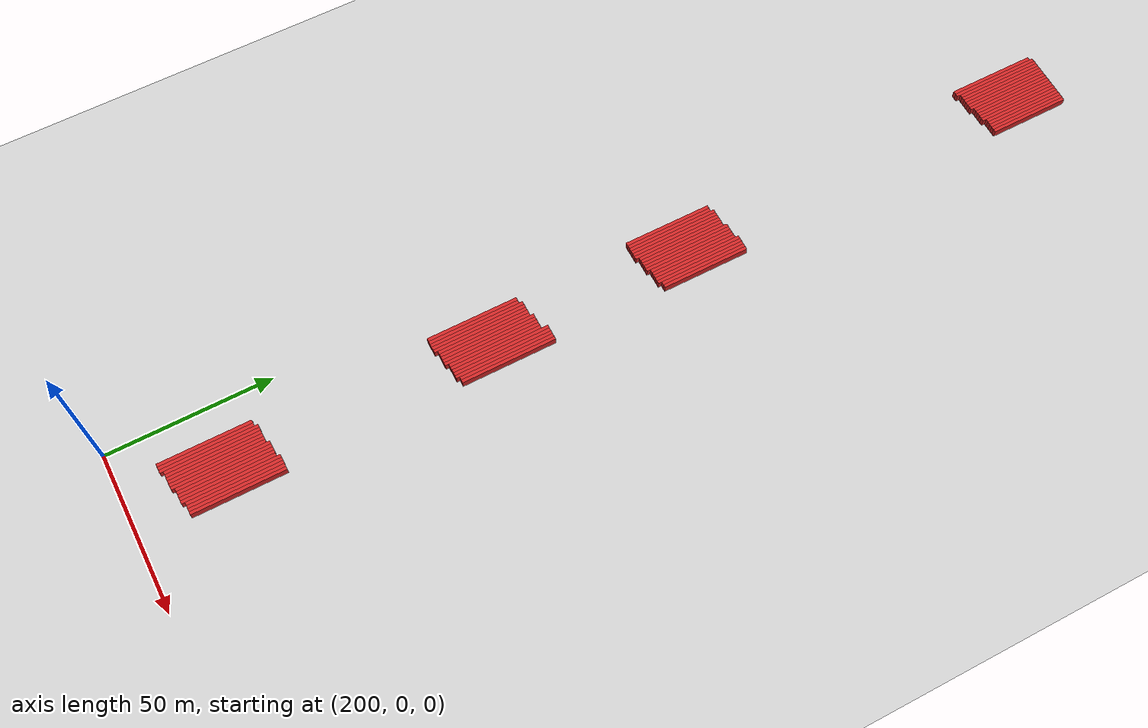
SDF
<sdf version="1.4">
 <world name="1_wall">
  <model name="ground_plane">
   <static>1</static>
   <link name="link">
    <collision name="collision">
     <geometry><plane><normal>0 0 1</normal><size>1000 1000</size></plane></geometry>
     <surface><friction><ode><mu>100</mu><mu2>50</mu2></ode></friction></surface>
    </collision>
    <visual name="visual">
     <cast_shadows>0</cast_shadows>
     <geometry><plane><normal>0 0 1</normal><size>10000 10000</size></plane></geometry>
     <material>
      <script><uri>file://media/materials/scripts/gazebo.material</uri><name>Gazebo/Grey</name></script>
     </material>
    </visual>
    <velocity_decay><linear>0</linear><angular>0</angular></velocity_decay>
   </link>
  </model>
  <model name="Wall_640">
   <static>1</static>
   <link name="Wall_640">
    <collision name="Wall_Collision_640">
     <geometry><box><size>27.0 1.0 2.5</size></box></geometry>
     <pose>0 0 1.25 0 -0 0</pose>
    </collision>
    <visual name="Wall_Visual_640">
     <pose>0 0 1.25 0 -0 0</pose>
     <geometry><box><size>27.0 1.0 2.5</size></box></geometry>
     <material>
      <script><uri>file://media/materials/scripts/gazebo.material</uri><name>Gazebo/Red</name></script>
     </material>
    </visual>
    <velocity_decay><linear>0</linear><angular>0</angular></velocity_decay>
    <pose>209.5 170.5 0 0 0 1.5707963267948966</pose>
   </link>
  </model>
  <model name="Wall_641">
   <static>1</static>
   <link name="Wall_641">
    <collision name="Wall_Collision_641">
     <geometry><box><size>27.0 1.0 2.5</size></box></geometry>
     <pose>0 0 1.25 0 -0 0</pose>
    </collision>
    <visual name="Wall_Visual_641">
     <pose>0 0 1.25 0 -0 0</pose>
     <geometry><box><size>27.0 1.0 2.5</size></box></geometry>
     <material>
      <script><uri>file://media/materials/scripts/gazebo.material</uri><name>Gazebo/Red</name></script>
     </material>
    </visual>
    <velocity_decay><linear>0</linear><angular>0</angular></velocity_decay>
    <pose>209.5 283.5 0 0 0 1.5707963267948966</pose>
   </link>
  </model>
  <model name="Wall_642">
   <static>1</static>
   <link name="Wall_642">
    <collision name="Wall_Collision_642">
     <geometry><box><size>28.0 1.0 2.5</size></box></geometry>
     <pose>0 0 1.25 0 -0 0</pose>
    </collision>
    <visual name="Wall_Visual_642">
     <pose>0 0 1.25 0 -0 0</pose>
     <geometry><box><size>28.0 1.0 2.5</size></box></geometry>
     <material>
      <script><uri>file://media/materials/scripts/gazebo.material</uri><name>Gazebo/Red</name></script>
     </material>
    </visual>
    <velocity_decay><linear>0</linear><angular>0</angular></velocity_decay>
    <pose>210.5 26.0 0 0 0 1.5707963267948966</pose>
   </link>
  </model>
  <model name="Wall_643">
   <static>1</static>
   <link name="Wall_643">
    <collision name="Wall_Collision_643">
     <geometry><box><size>28.0 1.0 2.5</size></box></geometry>
     <pose>0 0 1.25 0 -0 0</pose>
    </collision>
    <visual name="Wall_Visual_643">
     <pose>0 0 1.25 0 -0 0</pose>
     <geometry><box><size>28.0 1.0 2.5</size></box></geometry>
     <material>
      <script><uri>file://media/materials/scripts/gazebo.material</uri><name>Gazebo/Red</name></script>
     </material>
    </visual>
    <velocity_decay><linear>0</linear><angular>0</angular></velocity_decay>
    <pose>210.5 107.0 0 0 0 1.5707963267948966</pose>
   </link>
  </model>
  <model name="Wall_644">
   <static>1</static>
   <link name="Wall_644">
    <collision name="Wall_Collision_644">
     <geometry><box><size>27.0 1.0 2.5</size></box></geometry>
     <pose>0 0 1.25 0 -0 0</pose>
    </collision>
    <visual name="Wall_Visual_644">
     <pose>0 0 1.25 0 -0 0</pose>
     <geometry><box><size>27.0 1.0 2.5</size></box></geometry>
     <material>
      <script><uri>file://media/materials/scripts/gazebo.material</uri><name>Gazebo/Red</name></script>
     </material>
    </visual>
    <velocity_decay><linear>0</linear><angular>0</angular></velocity_decay>
    <pose>210.5 170.5 0 0 0 1.5707963267948966</pose>
   </link>
  </model>
  <model name="Wall_645">
   <static>1</static>
   <link name="Wall_645">
    <collision name="Wall_Collision_645">
     <geometry><box><size>28.0 1.0 2.5</size></box></geometry>
     <pose>0 0 1.25 0 -0 0</pose>
    </collision>
    <visual name="Wall_Visual_645">
     <pose>0 0 1.25 0 -0 0</pose>
     <geometry><box><size>28.0 1.0 2.5</size></box></geometry>
     <material>
      <script><uri>file://media/materials/scripts/gazebo.material</uri><name>Gazebo/Red</name></script>
     </material>
    </visual>
    <velocity_decay><linear>0</linear><angular>0</angular></velocity_decay>
    <pose>210.5 284.0 0 0 0 1.5707963267948966</pose>
   </link>
  </model>
  <model name="Wall_646">
   <static>1</static>
   <link name="Wall_646">
    <collision name="Wall_Collision_646">
     <geometry><box><size>28.0 1.0 2.5</size></box></geometry>
     <pose>0 0 1.25 0 -0 0</pose>
    </collision>
    <visual name="Wall_Visual_646">
     <pose>0 0 1.25 0 -0 0</pose>
     <geometry><box><size>28.0 1.0 2.5</size></box></geometry>
     <material>
      <script><uri>file://media/materials/scripts/gazebo.material</uri><name>Gazebo/Red</name></script>
     </material>
    </visual>
    <velocity_decay><linear>0</linear><angular>0</angular></velocity_decay>
    <pose>211.5 26.0 0 0 0 1.5707963267948966</pose>
   </link>
  </model>
  <model name="Wall_647">
   <static>1</static>
   <link name="Wall_647">
    <collision name="Wall_Collision_647">
     <geometry><box><size>28.0 1.0 2.5</size></box></geometry>
     <pose>0 0 1.25 0 -0 0</pose>
    </collision>
    <visual name="Wall_Visual_647">
     <pose>0 0 1.25 0 -0 0</pose>
     <geometry><box><size>28.0 1.0 2.5</size></box></geometry>
     <material>
      <script><uri>file://media/materials/scripts/gazebo.material</uri><name>Gazebo/Red</name></script>
     </material>
    </visual>
    <velocity_decay><linear>0</linear><angular>0</angular></velocity_decay>
    <pose>211.5 107.0 0 0 0 1.5707963267948966</pose>
   </link>
  </model>
  <model name="Wall_648">
   <static>1</static>
   <link name="Wall_648">
    <collision name="Wall_Collision_648">
     <geometry><box><size>28.0 1.0 2.5</size></box></geometry>
     <pose>0 0 1.25 0 -0 0</pose>
    </collision>
    <visual name="Wall_Visual_648">
     <pose>0 0 1.25 0 -0 0</pose>
     <geometry><box><size>28.0 1.0 2.5</size></box></geometry>
     <material>
      <script><uri>file://media/materials/scripts/gazebo.material</uri><name>Gazebo/Red</name></script>
     </material>
    </visual>
    <velocity_decay><linear>0</linear><angular>0</angular></velocity_decay>
    <pose>211.5 171.0 0 0 0 1.5707963267948966</pose>
   </link>
  </model>
  <model name="Wall_649">
   <static>1</static>
   <link name="Wall_649">
    <collision name="Wall_Collision_649">
     <geometry><box><size>27.0 1.0 2.5</size></box></geometry>
     <pose>0 0 1.25 0 -0 0</pose>
    </collision>
    <visual name="Wall_Visual_649">
     <pose>0 0 1.25 0 -0 0</pose>
     <geometry><box><size>27.0 1.0 2.5</size></box></geometry>
     <material>
      <script><uri>file://media/materials/scripts/gazebo.material</uri><name>Gazebo/Red</name></script>
     </material>
    </visual>
    <velocity_decay><linear>0</linear><angular>0</angular></velocity_decay>
    <pose>211.5 284.5 0 0 0 1.5707963267948966</pose>
   </link>
  </model>
  <model name="Wall_650">
   <static>1</static>
   <link name="Wall_650">
    <collision name="Wall_Collision_650">
     <geometry><box><size>29.0 1.0 2.5</size></box></geometry>
     <pose>0 0 1.25 0 -0 0</pose>
    </collision>
    <visual name="Wall_Visual_650">
     <pose>0 0 1.25 0 -0 0</pose>
     <geometry><box><size>29.0 1.0 2.5</size></box></geometry>
     <material>
      <script><uri>file://media/materials/scripts/gazebo.material</uri><name>Gazebo/Red</name></script>
     </material>
    </visual>
    <velocity_decay><linear>0</linear><angular>0</angular></velocity_decay>
    <pose>212.5 26.5 0 0 0 1.5707963267948966</pose>
   </link>
  </model>
  <model name="Wall_651">
   <static>1</static>
   <link name="Wall_651">
    <collision name="Wall_Collision_651">
     <geometry><box><size>29.0 1.0 2.5</size></box></geometry>
     <pose>0 0 1.25 0 -0 0</pose>
    </collision>
    <visual name="Wall_Visual_651">
     <pose>0 0 1.25 0 -0 0</pose>
     <geometry><box><size>29.0 1.0 2.5</size></box></geometry>
     <material>
      <script><uri>file://media/materials/scripts/gazebo.material</uri><name>Gazebo/Red</name></script>
     </material>
    </visual>
    <velocity_decay><linear>0</linear><angular>0</angular></velocity_decay>
    <pose>212.5 107.5 0 0 0 1.5707963267948966</pose>
   </link>
  </model>
  <model name="Wall_652">
   <static>1</static>
   <link name="Wall_652">
    <collision name="Wall_Collision_652">
     <geometry><box><size>28.0 1.0 2.5</size></box></geometry>
     <pose>0 0 1.25 0 -0 0</pose>
    </collision>
    <visual name="Wall_Visual_652">
     <pose>0 0 1.25 0 -0 0</pose>
     <geometry><box><size>28.0 1.0 2.5</size></box></geometry>
     <material>
      <script><uri>file://media/materials/scripts/gazebo.material</uri><name>Gazebo/Red</name></script>
     </material>
    </visual>
    <velocity_decay><linear>0</linear><angular>0</angular></velocity_decay>
    <pose>212.5 171.0 0 0 0 1.5707963267948966</pose>
   </link>
  </model>
  <model name="Wall_653">
   <static>1</static>
   <link name="Wall_653">
    <collision name="Wall_Collision_653">
     <geometry><box><size>27.0 1.0 2.5</size></box></geometry>
     <pose>0 0 1.25 0 -0 0</pose>
    </collision>
    <visual name="Wall_Visual_653">
     <pose>0 0 1.25 0 -0 0</pose>
     <geometry><box><size>27.0 1.0 2.5</size></box></geometry>
     <material>
      <script><uri>file://media/materials/scripts/gazebo.material</uri><name>Gazebo/Red</name></script>
     </material>
    </visual>
    <velocity_decay><linear>0</linear><angular>0</angular></velocity_decay>
    <pose>212.5 284.5 0 0 0 1.5707963267948966</pose>
   </link>
  </model>
  <model name="Wall_654">
   <static>1</static>
   <link name="Wall_654">
    <collision name="Wall_Collision_654">
     <geometry><box><size>28.0 1.0 2.5</size></box></geometry>
     <pose>0 0 1.25 0 -0 0</pose>
    </collision>
    <visual name="Wall_Visual_654">
     <pose>0 0 1.25 0 -0 0</pose>
     <geometry><box><size>28.0 1.0 2.5</size></box></geometry>
     <material>
      <script><uri>file://media/materials/scripts/gazebo.material</uri><name>Gazebo/Red</name></script>
     </material>
    </visual>
    <velocity_decay><linear>0</linear><angular>0</angular></velocity_decay>
    <pose>213.5 27.0 0 0 0 1.5707963267948966</pose>
   </link>
  </model>
  <model name="Wall_655">
   <static>1</static>
   <link name="Wall_655">
    <collision name="Wall_Collision_655">
     <geometry><box><size>29.0 1.0 2.5</size></box></geometry>
     <pose>0 0 1.25 0 -0 0</pose>
    </collision>
    <visual name="Wall_Visual_655">
     <pose>0 0 1.25 0 -0 0</pose>
     <geometry><box><size>29.0 1.0 2.5</size></box></geometry>
     <material>
      <script><uri>file://media/materials/scripts/gazebo.material</uri><name>Gazebo/Red</name></script>
     </material>
    </visual>
    <velocity_decay><linear>0</linear><angular>0</angular></velocity_decay>
    <pose>213.5 107.5 0 0 0 1.5707963267948966</pose>
   </link>
  </model>
  <model name="Wall_656">
   <static>1</static>
   <link name="Wall_656">
    <collision name="Wall_Collision_656">
     <geometry><box><size>28.0 1.0 2.5</size></box></geometry>
     <pose>0 0 1.25 0 -0 0</pose>
    </collision>
    <visual name="Wall_Visual_656">
     <pose>0 0 1.25 0 -0 0</pose>
     <geometry><box><size>28.0 1.0 2.5</size></box></geometry>
     <material>
      <script><uri>file://media/materials/scripts/gazebo.material</uri><name>Gazebo/Red</name></script>
     </material>
    </visual>
    <velocity_decay><linear>0</linear><angular>0</angular></velocity_decay>
    <pose>213.5 171.0 0 0 0 1.5707963267948966</pose>
   </link>
  </model>
  <model name="Wall_657">
   <static>1</static>
   <link name="Wall_657">
    <collision name="Wall_Collision_657">
     <geometry><box><size>27.0 1.0 2.5</size></box></geometry>
     <pose>0 0 1.25 0 -0 0</pose>
    </collision>
    <visual name="Wall_Visual_657">
     <pose>0 0 1.25 0 -0 0</pose>
     <geometry><box><size>27.0 1.0 2.5</size></box></geometry>
     <material>
      <script><uri>file://media/materials/scripts/gazebo.material</uri><name>Gazebo/Red</name></script>
     </material>
    </visual>
    <velocity_decay><linear>0</linear><angular>0</angular></velocity_decay>
    <pose>213.5 284.5 0 0 0 1.5707963267948966</pose>
   </link>
  </model>
  <model name="Wall_658">
   <static>1</static>
   <link name="Wall_658">
    <collision name="Wall_Collision_658">
     <geometry><box><size>28.0 1.0 2.5</size></box></geometry>
     <pose>0 0 1.25 0 -0 0</pose>
    </collision>
    <visual name="Wall_Visual_658">
     <pose>0 0 1.25 0 -0 0</pose>
     <geometry><box><size>28.0 1.0 2.5</size></box></geometry>
     <material>
      <script><uri>file://media/materials/scripts/gazebo.material</uri><name>Gazebo/Red</name></script>
     </material>
    </visual>
    <velocity_decay><linear>0</linear><angular>0</angular></velocity_decay>
    <pose>214.5 27.0 0 0 0 1.5707963267948966</pose>
   </link>
  </model>
  <model name="Wall_659">
   <static>1</static>
   <link name="Wall_659">
    <collision name="Wall_Collision_659">
     <geometry><box><size>29.0 1.0 2.5</size></box></geometry>
     <pose>0 0 1.25 0 -0 0</pose>
    </collision>
    <visual name="Wall_Visual_659">
     <pose>0 0 1.25 0 -0 0</pose>
     <geometry><box><size>29.0 1.0 2.5</size></box></geometry>
     <material>
      <script><uri>file://media/materials/scripts/gazebo.material</uri><name>Gazebo/Red</name></script>
     </material>
    </visual>
    <velocity_decay><linear>0</linear><angular>0</angular></velocity_decay>
    <pose>214.5 107.5 0 0 0 1.5707963267948966</pose>
   </link>
  </model>
  <model name="Wall_660">
   <static>1</static>
   <link name="Wall_660">
    <collision name="Wall_Collision_660">
     <geometry><box><size>28.0 1.0 2.5</size></box></geometry>
     <pose>0 0 1.25 0 -0 0</pose>
    </collision>
    <visual name="Wall_Visual_660">
     <pose>0 0 1.25 0 -0 0</pose>
     <geometry><box><size>28.0 1.0 2.5</size></box></geometry>
     <material>
      <script><uri>file://media/materials/scripts/gazebo.material</uri><name>Gazebo/Red</name></script>
     </material>
    </visual>
    <velocity_decay><linear>0</linear><angular>0</angular></velocity_decay>
    <pose>214.5 171.0 0 0 0 1.5707963267948966</pose>
   </link>
  </model>
  <model name="Wall_661">
   <static>1</static>
   <link name="Wall_661">
    <collision name="Wall_Collision_661">
     <geometry><box><size>27.0 1.0 2.5</size></box></geometry>
     <pose>0 0 1.25 0 -0 0</pose>
    </collision>
    <visual name="Wall_Visual_661">
     <pose>0 0 1.25 0 -0 0</pose>
     <geometry><box><size>27.0 1.0 2.5</size></box></geometry>
     <material>
      <script><uri>file://media/materials/scripts/gazebo.material</uri><name>Gazebo/Red</name></script>
     </material>
    </visual>
    <velocity_decay><linear>0</linear><angular>0</angular></velocity_decay>
    <pose>214.5 284.5 0 0 0 1.5707963267948966</pose>
   </link>
  </model>
  <model name="Wall_662">
   <static>1</static>
   <link name="Wall_662">
    <collision name="Wall_Collision_662">
     <geometry><box><size>28.0 1.0 2.5</size></box></geometry>
     <pose>0 0 1.25 0 -0 0</pose>
    </collision>
    <visual name="Wall_Visual_662">
     <pose>0 0 1.25 0 -0 0</pose>
     <geometry><box><size>28.0 1.0 2.5</size></box></geometry>
     <material>
      <script><uri>file://media/materials/scripts/gazebo.material</uri><name>Gazebo/Red</name></script>
     </material>
    </visual>
    <velocity_decay><linear>0</linear><angular>0</angular></velocity_decay>
    <pose>215.5 27.0 0 0 0 1.5707963267948966</pose>
   </link>
  </model>
  <model name="Wall_663">
   <static>1</static>
   <link name="Wall_663">
    <collision name="Wall_Collision_663">
     <geometry><box><size>28.0 1.0 2.5</size></box></geometry>
     <pose>0 0 1.25 0 -0 0</pose>
    </collision>
    <visual name="Wall_Visual_663">
     <pose>0 0 1.25 0 -0 0</pose>
     <geometry><box><size>28.0 1.0 2.5</size></box></geometry>
     <material>
      <script><uri>file://media/materials/scripts/gazebo.material</uri><name>Gazebo/Red</name></script>
     </material>
    </visual>
    <velocity_decay><linear>0</linear><angular>0</angular></velocity_decay>
    <pose>215.5 108.0 0 0 0 1.5707963267948966</pose>
   </link>
  </model>
  <model name="Wall_664">
   <static>1</static>
   <link name="Wall_664">
    <collision name="Wall_Collision_664">
     <geometry><box><size>27.0 1.0 2.5</size></box></geometry>
     <pose>0 0 1.25 0 -0 0</pose>
    </collision>
    <visual name="Wall_Visual_664">
     <pose>0 0 1.25 0 -0 0</pose>
     <geometry><box><size>27.0 1.0 2.5</size></box></geometry>
     <material>
      <script><uri>file://media/materials/scripts/gazebo.material</uri><name>Gazebo/Red</name></script>
     </material>
    </visual>
    <velocity_decay><linear>0</linear><angular>0</angular></velocity_decay>
    <pose>215.5 171.5 0 0 0 1.5707963267948966</pose>
   </link>
  </model>
  <model name="Wall_665">
   <static>1</static>
   <link name="Wall_665">
    <collision name="Wall_Collision_665">
     <geometry><box><size>27.0 1.0 2.5</size></box></geometry>
     <pose>0 0 1.25 0 -0 0</pose>
    </collision>
    <visual name="Wall_Visual_665">
     <pose>0 0 1.25 0 -0 0</pose>
     <geometry><box><size>27.0 1.0 2.5</size></box></geometry>
     <material>
      <script><uri>file://media/materials/scripts/gazebo.material</uri><name>Gazebo/Red</name></script>
     </material>
    </visual>
    <velocity_decay><linear>0</linear><angular>0</angular></velocity_decay>
    <pose>215.5 284.5 0 0 0 1.5707963267948966</pose>
   </link>
  </model>
  <model name="Wall_666">
   <static>1</static>
   <link name="Wall_666">
    <collision name="Wall_Collision_666">
     <geometry><box><size>28.0 1.0 2.5</size></box></geometry>
     <pose>0 0 1.25 0 -0 0</pose>
    </collision>
    <visual name="Wall_Visual_666">
     <pose>0 0 1.25 0 -0 0</pose>
     <geometry><box><size>28.0 1.0 2.5</size></box></geometry>
     <material>
      <script><uri>file://media/materials/scripts/gazebo.material</uri><name>Gazebo/Red</name></script>
     </material>
    </visual>
    <velocity_decay><linear>0</linear><angular>0</angular></velocity_decay>
    <pose>216.5 27.0 0 0 0 1.5707963267948966</pose>
   </link>
  </model>
  <model name="Wall_667">
   <static>1</static>
   <link name="Wall_667">
    <collision name="Wall_Collision_667">
     <geometry><box><size>28.0 1.0 2.5</size></box></geometry>
     <pose>0 0 1.25 0 -0 0</pose>
    </collision>
    <visual name="Wall_Visual_667">
     <pose>0 0 1.25 0 -0 0</pose>
     <geometry><box><size>28.0 1.0 2.5</size></box></geometry>
     <material>
      <script><uri>file://media/materials/scripts/gazebo.material</uri><name>Gazebo/Red</name></script>
     </material>
    </visual>
    <velocity_decay><linear>0</linear><angular>0</angular></velocity_decay>
    <pose>216.5 108.0 0 0 0 1.5707963267948966</pose>
   </link>
  </model>
  <model name="Wall_668">
   <static>1</static>
   <link name="Wall_668">
    <collision name="Wall_Collision_668">
     <geometry><box><size>27.0 1.0 2.5</size></box></geometry>
     <pose>0 0 1.25 0 -0 0</pose>
    </collision>
    <visual name="Wall_Visual_668">
     <pose>0 0 1.25 0 -0 0</pose>
     <geometry><box><size>27.0 1.0 2.5</size></box></geometry>
     <material>
      <script><uri>file://media/materials/scripts/gazebo.material</uri><name>Gazebo/Red</name></script>
     </material>
    </visual>
    <velocity_decay><linear>0</linear><angular>0</angular></velocity_decay>
    <pose>216.5 171.5 0 0 0 1.5707963267948966</pose>
   </link>
  </model>
  <model name="Wall_669">
   <static>1</static>
   <link name="Wall_669">
    <collision name="Wall_Collision_669">
     <geometry><box><size>27.0 1.0 2.5</size></box></geometry>
     <pose>0 0 1.25 0 -0 0</pose>
    </collision>
    <visual name="Wall_Visual_669">
     <pose>0 0 1.25 0 -0 0</pose>
     <geometry><box><size>27.0 1.0 2.5</size></box></geometry>
     <material>
      <script><uri>file://media/materials/scripts/gazebo.material</uri><name>Gazebo/Red</name></script>
     </material>
    </visual>
    <velocity_decay><linear>0</linear><angular>0</angular></velocity_decay>
    <pose>216.5 284.5 0 0 0 1.5707963267948966</pose>
   </link>
  </model>
  <model name="Wall_670">
   <static>1</static>
   <link name="Wall_670">
    <collision name="Wall_Collision_670">
     <geometry><box><size>28.0 1.0 2.5</size></box></geometry>
     <pose>0 0 1.25 0 -0 0</pose>
    </collision>
    <visual name="Wall_Visual_670">
     <pose>0 0 1.25 0 -0 0</pose>
     <geometry><box><size>28.0 1.0 2.5</size></box></geometry>
     <material>
      <script><uri>file://media/materials/scripts/gazebo.material</uri><name>Gazebo/Red</name></script>
     </material>
    </visual>
    <velocity_decay><linear>0</linear><angular>0</angular></velocity_decay>
    <pose>217.5 27.0 0 0 0 1.5707963267948966</pose>
   </link>
  </model>
  <model name="Wall_671">
   <static>1</static>
   <link name="Wall_671">
    <collision name="Wall_Collision_671">
     <geometry><box><size>29.0 1.0 2.5</size></box></geometry>
     <pose>0 0 1.25 0 -0 0</pose>
    </collision>
    <visual name="Wall_Visual_671">
     <pose>0 0 1.25 0 -0 0</pose>
     <geometry><box><size>29.0 1.0 2.5</size></box></geometry>
     <material>
      <script><uri>file://media/materials/scripts/gazebo.material</uri><name>Gazebo/Red</name></script>
     </material>
    </visual>
    <velocity_decay><linear>0</linear><angular>0</angular></velocity_decay>
    <pose>217.5 108.5 0 0 0 1.5707963267948966</pose>
   </link>
  </model>
  <model name="Wall_672">
   <static>1</static>
   <link name="Wall_672">
    <collision name="Wall_Collision_672">
     <geometry><box><size>28.0 1.0 2.5</size></box></geometry>
     <pose>0 0 1.25 0 -0 0</pose>
    </collision>
    <visual name="Wall_Visual_672">
     <pose>0 0 1.25 0 -0 0</pose>
     <geometry><box><size>28.0 1.0 2.5</size></box></geometry>
     <material>
      <script><uri>file://media/materials/scripts/gazebo.material</uri><name>Gazebo/Red</name></script>
     </material>
    </visual>
    <velocity_decay><linear>0</linear><angular>0</angular></velocity_decay>
    <pose>217.5 172.0 0 0 0 1.5707963267948966</pose>
   </link>
  </model>
  <model name="Wall_673">
   <static>1</static>
   <link name="Wall_673">
    <collision name="Wall_Collision_673">
     <geometry><box><size>26.0 1.0 2.5</size></box></geometry>
     <pose>0 0 1.25 0 -0 0</pose>
    </collision>
    <visual name="Wall_Visual_673">
     <pose>0 0 1.25 0 -0 0</pose>
     <geometry><box><size>26.0 1.0 2.5</size></box></geometry>
     <material>
      <script><uri>file://media/materials/scripts/gazebo.material</uri><name>Gazebo/Red</name></script>
     </material>
    </visual>
    <velocity_decay><linear>0</linear><angular>0</angular></velocity_decay>
    <pose>217.5 285.0 0 0 0 1.5707963267948966</pose>
   </link>
  </model>
  <model name="Wall_674">
   <static>1</static>
   <link name="Wall_674">
    <collision name="Wall_Collision_674">
     <geometry><box><size>29.0 1.0 2.5</size></box></geometry>
     <pose>0 0 1.25 0 -0 0</pose>
    </collision>
    <visual name="Wall_Visual_674">
     <pose>0 0 1.25 0 -0 0</pose>
     <geometry><box><size>29.0 1.0 2.5</size></box></geometry>
     <material>
      <script><uri>file://media/materials/scripts/gazebo.material</uri><name>Gazebo/Red</name></script>
     </material>
    </visual>
    <velocity_decay><linear>0</linear><angular>0</angular></velocity_decay>
    <pose>218.5 27.5 0 0 0 1.5707963267948966</pose>
   </link>
  </model>
  <model name="Wall_675">
   <static>1</static>
   <link name="Wall_675">
    <collision name="Wall_Collision_675">
     <geometry><box><size>29.0 1.0 2.5</size></box></geometry>
     <pose>0 0 1.25 0 -0 0</pose>
    </collision>
    <visual name="Wall_Visual_675">
     <pose>0 0 1.25 0 -0 0</pose>
     <geometry><box><size>29.0 1.0 2.5</size></box></geometry>
     <material>
      <script><uri>file://media/materials/scripts/gazebo.material</uri><name>Gazebo/Red</name></script>
     </material>
    </visual>
    <velocity_decay><linear>0</linear><angular>0</angular></velocity_decay>
    <pose>218.5 108.5 0 0 0 1.5707963267948966</pose>
   </link>
  </model>
  <model name="Wall_676">
   <static>1</static>
   <link name="Wall_676">
    <collision name="Wall_Collision_676">
     <geometry><box><size>28.0 1.0 2.5</size></box></geometry>
     <pose>0 0 1.25 0 -0 0</pose>
    </collision>
    <visual name="Wall_Visual_676">
     <pose>0 0 1.25 0 -0 0</pose>
     <geometry><box><size>28.0 1.0 2.5</size></box></geometry>
     <material>
      <script><uri>file://media/materials/scripts/gazebo.material</uri><name>Gazebo/Red</name></script>
     </material>
    </visual>
    <velocity_decay><linear>0</linear><angular>0</angular></velocity_decay>
    <pose>218.5 172.0 0 0 0 1.5707963267948966</pose>
   </link>
  </model>
  <model name="Wall_677">
   <static>1</static>
   <link name="Wall_677">
    <collision name="Wall_Collision_677">
     <geometry><box><size>26.0 1.0 2.5</size></box></geometry>
     <pose>0 0 1.25 0 -0 0</pose>
    </collision>
    <visual name="Wall_Visual_677">
     <pose>0 0 1.25 0 -0 0</pose>
     <geometry><box><size>26.0 1.0 2.5</size></box></geometry>
     <material>
      <script><uri>file://media/materials/scripts/gazebo.material</uri><name>Gazebo/Red</name></script>
     </material>
    </visual>
    <velocity_decay><linear>0</linear><angular>0</angular></velocity_decay>
    <pose>218.5 285.0 0 0 0 1.5707963267948966</pose>
   </link>
  </model>
  <model name="Wall_678">
   <static>1</static>
   <link name="Wall_678">
    <collision name="Wall_Collision_678">
     <geometry><box><size>28.0 1.0 2.5</size></box></geometry>
     <pose>0 0 1.25 0 -0 0</pose>
    </collision>
    <visual name="Wall_Visual_678">
     <pose>0 0 1.25 0 -0 0</pose>
     <geometry><box><size>28.0 1.0 2.5</size></box></geometry>
     <material>
      <script><uri>file://media/materials/scripts/gazebo.material</uri><name>Gazebo/Red</name></script>
     </material>
    </visual>
    <velocity_decay><linear>0</linear><angular>0</angular></velocity_decay>
    <pose>219.5 28.0 0 0 0 1.5707963267948966</pose>
   </link>
  </model>
  <model name="Wall_679">
   <static>1</static>
   <link name="Wall_679">
    <collision name="Wall_Collision_679">
     <geometry><box><size>29.0 1.0 2.5</size></box></geometry>
     <pose>0 0 1.25 0 -0 0</pose>
    </collision>
    <visual name="Wall_Visual_679">
     <pose>0 0 1.25 0 -0 0</pose>
     <geometry><box><size>29.0 1.0 2.5</size></box></geometry>
     <material>
      <script><uri>file://media/materials/scripts/gazebo.material</uri><name>Gazebo/Red</name></script>
     </material>
    </visual>
    <velocity_decay><linear>0</linear><angular>0</angular></velocity_decay>
    <pose>219.5 108.5 0 0 0 1.5707963267948966</pose>
   </link>
  </model>
  <model name="Wall_680">
   <static>1</static>
   <link name="Wall_680">
    <collision name="Wall_Collision_680">
     <geometry><box><size>28.0 1.0 2.5</size></box></geometry>
     <pose>0 0 1.25 0 -0 0</pose>
    </collision>
    <visual name="Wall_Visual_680">
     <pose>0 0 1.25 0 -0 0</pose>
     <geometry><box><size>28.0 1.0 2.5</size></box></geometry>
     <material>
      <script><uri>file://media/materials/scripts/gazebo.material</uri><name>Gazebo/Red</name></script>
     </material>
    </visual>
    <velocity_decay><linear>0</linear><angular>0</angular></velocity_decay>
    <pose>219.5 172.0 0 0 0 1.5707963267948966</pose>
   </link>
  </model>
  <model name="Wall_681">
   <static>1</static>
   <link name="Wall_681">
    <collision name="Wall_Collision_681">
     <geometry><box><size>26.0 1.0 2.5</size></box></geometry>
     <pose>0 0 1.25 0 -0 0</pose>
    </collision>
    <visual name="Wall_Visual_681">
     <pose>0 0 1.25 0 -0 0</pose>
     <geometry><box><size>26.0 1.0 2.5</size></box></geometry>
     <material>
      <script><uri>file://media/materials/scripts/gazebo.material</uri><name>Gazebo/Red</name></script>
     </material>
    </visual>
    <velocity_decay><linear>0</linear><angular>0</angular></velocity_decay>
    <pose>219.5 285.0 0 0 0 1.5707963267948966</pose>
   </link>
  </model>
  <model name="Wall_682">
   <static>1</static>
   <link name="Wall_682">
    <collision name="Wall_Collision_682">
     <geometry><box><size>28.0 1.0 2.5</size></box></geometry>
     <pose>0 0 1.25 0 -0 0</pose>
    </collision>
    <visual name="Wall_Visual_682">
     <pose>0 0 1.25 0 -0 0</pose>
     <geometry><box><size>28.0 1.0 2.5</size></box></geometry>
     <material>
      <script><uri>file://media/materials/scripts/gazebo.material</uri><name>Gazebo/Red</name></script>
     </material>
    </visual>
    <velocity_decay><linear>0</linear><angular>0</angular></velocity_decay>
    <pose>220.5 28.0 0 0 0 1.5707963267948966</pose>
   </link>
  </model>
  <model name="Wall_683">
   <static>1</static>
   <link name="Wall_683">
    <collision name="Wall_Collision_683">
     <geometry><box><size>28.0 1.0 2.5</size></box></geometry>
     <pose>0 0 1.25 0 -0 0</pose>
    </collision>
    <visual name="Wall_Visual_683">
     <pose>0 0 1.25 0 -0 0</pose>
     <geometry><box><size>28.0 1.0 2.5</size></box></geometry>
     <material>
      <script><uri>file://media/materials/scripts/gazebo.material</uri><name>Gazebo/Red</name></script>
     </material>
    </visual>
    <velocity_decay><linear>0</linear><angular>0</angular></velocity_decay>
    <pose>220.5 109.0 0 0 0 1.5707963267948966</pose>
   </link>
  </model>
  <model name="Wall_684">
   <static>1</static>
   <link name="Wall_684">
    <collision name="Wall_Collision_684">
     <geometry><box><size>27.0 1.0 2.5</size></box></geometry>
     <pose>0 0 1.25 0 -0 0</pose>
    </collision>
    <visual name="Wall_Visual_684">
     <pose>0 0 1.25 0 -0 0</pose>
     <geometry><box><size>27.0 1.0 2.5</size></box></geometry>
     <material>
      <script><uri>file://media/materials/scripts/gazebo.material</uri><name>Gazebo/Red</name></script>
     </material>
    </visual>
    <velocity_decay><linear>0</linear><angular>0</angular></velocity_decay>
    <pose>220.5 172.5 0 0 0 1.5707963267948966</pose>
   </link>
  </model>
  <model name="Wall_685">
   <static>1</static>
   <link name="Wall_685">
    <collision name="Wall_Collision_685">
     <geometry><box><size>26.0 1.0 2.5</size></box></geometry>
     <pose>0 0 1.25 0 -0 0</pose>
    </collision>
    <visual name="Wall_Visual_685">
     <pose>0 0 1.25 0 -0 0</pose>
     <geometry><box><size>26.0 1.0 2.5</size></box></geometry>
     <material>
      <script><uri>file://media/materials/scripts/gazebo.material</uri><name>Gazebo/Red</name></script>
     </material>
    </visual>
    <velocity_decay><linear>0</linear><angular>0</angular></velocity_decay>
    <pose>220.5 285.0 0 0 0 1.5707963267948966</pose>
   </link>
  </model>
  <model name="Wall_686">
   <static>1</static>
   <link name="Wall_686">
    <collision name="Wall_Collision_686">
     <geometry><box><size>28.0 1.0 2.5</size></box></geometry>
     <pose>0 0 1.25 0 -0 0</pose>
    </collision>
    <visual name="Wall_Visual_686">
     <pose>0 0 1.25 0 -0 0</pose>
     <geometry><box><size>28.0 1.0 2.5</size></box></geometry>
     <material>
      <script><uri>file://media/materials/scripts/gazebo.material</uri><name>Gazebo/Red</name></script>
     </material>
    </visual>
    <velocity_decay><linear>0</linear><angular>0</angular></velocity_decay>
    <pose>221.5 28.0 0 0 0 1.5707963267948966</pose>
   </link>
  </model>
  <model name="Wall_687">
   <static>1</static>
   <link name="Wall_687">
    <collision name="Wall_Collision_687">
     <geometry><box><size>28.0 1.0 2.5</size></box></geometry>
     <pose>0 0 1.25 0 -0 0</pose>
    </collision>
    <visual name="Wall_Visual_687">
     <pose>0 0 1.25 0 -0 0</pose>
     <geometry><box><size>28.0 1.0 2.5</size></box></geometry>
     <material>
      <script><uri>file://media/materials/scripts/gazebo.material</uri><name>Gazebo/Red</name></script>
     </material>
    </visual>
    <velocity_decay><linear>0</linear><angular>0</angular></velocity_decay>
    <pose>221.5 109.0 0 0 0 1.5707963267948966</pose>
   </link>
  </model>
  <model name="Wall_688">
   <static>1</static>
   <link name="Wall_688">
    <collision name="Wall_Collision_688">
     <geometry><box><size>27.0 1.0 2.5</size></box></geometry>
     <pose>0 0 1.25 0 -0 0</pose>
    </collision>
    <visual name="Wall_Visual_688">
     <pose>0 0 1.25 0 -0 0</pose>
     <geometry><box><size>27.0 1.0 2.5</size></box></geometry>
     <material>
      <script><uri>file://media/materials/scripts/gazebo.material</uri><name>Gazebo/Red</name></script>
     </material>
    </visual>
    <velocity_decay><linear>0</linear><angular>0</angular></velocity_decay>
    <pose>221.5 172.5 0 0 0 1.5707963267948966</pose>
   </link>
  </model>
  <model name="Wall_689">
   <static>1</static>
   <link name="Wall_689">
    <collision name="Wall_Collision_689">
     <geometry><box><size>26.0 1.0 2.5</size></box></geometry>
     <pose>0 0 1.25 0 -0 0</pose>
    </collision>
    <visual name="Wall_Visual_689">
     <pose>0 0 1.25 0 -0 0</pose>
     <geometry><box><size>26.0 1.0 2.5</size></box></geometry>
     <material>
      <script><uri>file://media/materials/scripts/gazebo.material</uri><name>Gazebo/Red</name></script>
     </material>
    </visual>
    <velocity_decay><linear>0</linear><angular>0</angular></velocity_decay>
    <pose>221.5 285.0 0 0 0 1.5707963267948966</pose>
   </link>
  </model>
  <model name="Wall_690">
   <static>1</static>
   <link name="Wall_690">
    <collision name="Wall_Collision_690">
     <geometry><box><size>28.0 1.0 2.5</size></box></geometry>
     <pose>0 0 1.25 0 -0 0</pose>
    </collision>
    <visual name="Wall_Visual_690">
     <pose>0 0 1.25 0 -0 0</pose>
     <geometry><box><size>28.0 1.0 2.5</size></box></geometry>
     <material>
      <script><uri>file://media/materials/scripts/gazebo.material</uri><name>Gazebo/Red</name></script>
     </material>
    </visual>
    <velocity_decay><linear>0</linear><angular>0</angular></velocity_decay>
    <pose>222.5 28.0 0 0 0 1.5707963267948966</pose>
   </link>
  </model>
  <model name="Wall_691">
   <static>1</static>
   <link name="Wall_691">
    <collision name="Wall_Collision_691">
     <geometry><box><size>30.0 1.0 2.5</size></box></geometry>
     <pose>0 0 1.25 0 -0 0</pose>
    </collision>
    <visual name="Wall_Visual_691">
     <pose>0 0 1.25 0 -0 0</pose>
     <geometry><box><size>30.0 1.0 2.5</size></box></geometry>
     <material>
      <script><uri>file://media/materials/scripts/gazebo.material</uri><name>Gazebo/Red</name></script>
     </material>
    </visual>
    <velocity_decay><linear>0</linear><angular>0</angular></velocity_decay>
    <pose>222.5 110.0 0 0 0 1.5707963267948966</pose>
   </link>
  </model>
  <model name="Wall_692">
   <static>1</static>
   <link name="Wall_692">
    <collision name="Wall_Collision_692">
     <geometry><box><size>28.0 1.0 2.5</size></box></geometry>
     <pose>0 0 1.25 0 -0 0</pose>
    </collision>
    <visual name="Wall_Visual_692">
     <pose>0 0 1.25 0 -0 0</pose>
     <geometry><box><size>28.0 1.0 2.5</size></box></geometry>
     <material>
      <script><uri>file://media/materials/scripts/gazebo.material</uri><name>Gazebo/Red</name></script>
     </material>
    </visual>
    <velocity_decay><linear>0</linear><angular>0</angular></velocity_decay>
    <pose>222.5 173.0 0 0 0 1.5707963267948966</pose>
   </link>
  </model>
  <model name="Wall_693">
   <static>1</static>
   <link name="Wall_693">
    <collision name="Wall_Collision_693">
     <geometry><box><size>25.0 1.0 2.5</size></box></geometry>
     <pose>0 0 1.25 0 -0 0</pose>
    </collision>
    <visual name="Wall_Visual_693">
     <pose>0 0 1.25 0 -0 0</pose>
     <geometry><box><size>25.0 1.0 2.5</size></box></geometry>
     <material>
      <script><uri>file://media/materials/scripts/gazebo.material</uri><name>Gazebo/Red</name></script>
     </material>
    </visual>
    <velocity_decay><linear>0</linear><angular>0</angular></velocity_decay>
    <pose>222.5 285.5 0 0 0 1.5707963267948966</pose>
   </link>
  </model>
  <model name="Wall_694">
   <static>1</static>
   <link name="Wall_694">
    <collision name="Wall_Collision_694">
     <geometry><box><size>29.0 1.0 2.5</size></box></geometry>
     <pose>0 0 1.25 0 -0 0</pose>
    </collision>
    <visual name="Wall_Visual_694">
     <pose>0 0 1.25 0 -0 0</pose>
     <geometry><box><size>29.0 1.0 2.5</size></box></geometry>
     <material>
      <script><uri>file://media/materials/scripts/gazebo.material</uri><name>Gazebo/Red</name></script>
     </material>
    </visual>
    <velocity_decay><linear>0</linear><angular>0</angular></velocity_decay>
    <pose>223.5 28.5 0 0 0 1.5707963267948966</pose>
   </link>
  </model>
  <model name="Wall_695">
   <static>1</static>
   <link name="Wall_695">
    <collision name="Wall_Collision_695">
     <geometry><box><size>30.0 1.0 2.5</size></box></geometry>
     <pose>0 0 1.25 0 -0 0</pose>
    </collision>
    <visual name="Wall_Visual_695">
     <pose>0 0 1.25 0 -0 0</pose>
     <geometry><box><size>30.0 1.0 2.5</size></box></geometry>
     <material>
      <script><uri>file://media/materials/scripts/gazebo.material</uri><name>Gazebo/Red</name></script>
     </material>
    </visual>
    <velocity_decay><linear>0</linear><angular>0</angular></velocity_decay>
    <pose>223.5 110.0 0 0 0 1.5707963267948966</pose>
   </link>
  </model>
  <model name="Wall_696">
   <static>1</static>
   <link name="Wall_696">
    <collision name="Wall_Collision_696">
     <geometry><box><size>28.0 1.0 2.5</size></box></geometry>
     <pose>0 0 1.25 0 -0 0</pose>
    </collision>
    <visual name="Wall_Visual_696">
     <pose>0 0 1.25 0 -0 0</pose>
     <geometry><box><size>28.0 1.0 2.5</size></box></geometry>
     <material>
      <script><uri>file://media/materials/scripts/gazebo.material</uri><name>Gazebo/Red</name></script>
     </material>
    </visual>
    <velocity_decay><linear>0</linear><angular>0</angular></velocity_decay>
    <pose>223.5 173.0 0 0 0 1.5707963267948966</pose>
   </link>
  </model>
  <model name="Wall_697">
   <static>1</static>
   <link name="Wall_697">
    <collision name="Wall_Collision_697">
     <geometry><box><size>25.0 1.0 2.5</size></box></geometry>
     <pose>0 0 1.25 0 -0 0</pose>
    </collision>
    <visual name="Wall_Visual_697">
     <pose>0 0 1.25 0 -0 0</pose>
     <geometry><box><size>25.0 1.0 2.5</size></box></geometry>
     <material>
      <script><uri>file://media/materials/scripts/gazebo.material</uri><name>Gazebo/Red</name></script>
     </material>
    </visual>
    <velocity_decay><linear>0</linear><angular>0</angular></velocity_decay>
    <pose>223.5 285.5 0 0 0 1.5707963267948966</pose>
   </link>
  </model>
  <model name="Wall_698">
   <static>1</static>
   <link name="Wall_698">
    <collision name="Wall_Collision_698">
     <geometry><box><size>28.0 1.0 2.5</size></box></geometry>
     <pose>0 0 1.25 0 -0 0</pose>
    </collision>
    <visual name="Wall_Visual_698">
     <pose>0 0 1.25 0 -0 0</pose>
     <geometry><box><size>28.0 1.0 2.5</size></box></geometry>
     <material>
      <script><uri>file://media/materials/scripts/gazebo.material</uri><name>Gazebo/Red</name></script>
     </material>
    </visual>
    <velocity_decay><linear>0</linear><angular>0</angular></velocity_decay>
    <pose>224.5 29.0 0 0 0 1.5707963267948966</pose>
   </link>
  </model>
  <model name="Wall_699">
   <static>1</static>
   <link name="Wall_699">
    <collision name="Wall_Collision_699">
     <geometry><box><size>30.0 1.0 2.5</size></box></geometry>
     <pose>0 0 1.25 0 -0 0</pose>
    </collision>
    <visual name="Wall_Visual_699">
     <pose>0 0 1.25 0 -0 0</pose>
     <geometry><box><size>30.0 1.0 2.5</size></box></geometry>
     <material>
      <script><uri>file://media/materials/scripts/gazebo.material</uri><name>Gazebo/Red</name></script>
     </material>
    </visual>
    <velocity_decay><linear>0</linear><angular>0</angular></velocity_decay>
    <pose>224.5 110.0 0 0 0 1.5707963267948966</pose>
   </link>
  </model>
  <model name="Wall_700">
   <static>1</static>
   <link name="Wall_700">
    <collision name="Wall_Collision_700">
     <geometry><box><size>28.0 1.0 2.5</size></box></geometry>
     <pose>0 0 1.25 0 -0 0</pose>
    </collision>
    <visual name="Wall_Visual_700">
     <pose>0 0 1.25 0 -0 0</pose>
     <geometry><box><size>28.0 1.0 2.5</size></box></geometry>
     <material>
      <script><uri>file://media/materials/scripts/gazebo.material</uri><name>Gazebo/Red</name></script>
     </material>
    </visual>
    <velocity_decay><linear>0</linear><angular>0</angular></velocity_decay>
    <pose>224.5 173.0 0 0 0 1.5707963267948966</pose>
   </link>
  </model>
  <model name="Wall_701">
   <static>1</static>
   <link name="Wall_701">
    <collision name="Wall_Collision_701">
     <geometry><box><size>25.0 1.0 2.5</size></box></geometry>
     <pose>0 0 1.25 0 -0 0</pose>
    </collision>
    <visual name="Wall_Visual_701">
     <pose>0 0 1.25 0 -0 0</pose>
     <geometry><box><size>25.0 1.0 2.5</size></box></geometry>
     <material>
      <script><uri>file://media/materials/scripts/gazebo.material</uri><name>Gazebo/Red</name></script>
     </material>
    </visual>
    <velocity_decay><linear>0</linear><angular>0</angular></velocity_decay>
    <pose>224.5 285.5 0 0 0 1.5707963267948966</pose>
   </link>
  </model>
  <model name="Wall_702">
   <static>1</static>
   <link name="Wall_702">
    <collision name="Wall_Collision_702">
     <geometry><box><size>28.0 1.0 2.5</size></box></geometry>
     <pose>0 0 1.25 0 -0 0</pose>
    </collision>
    <visual name="Wall_Visual_702">
     <pose>0 0 1.25 0 -0 0</pose>
     <geometry><box><size>28.0 1.0 2.5</size></box></geometry>
     <material>
      <script><uri>file://media/materials/scripts/gazebo.material</uri><name>Gazebo/Red</name></script>
     </material>
    </visual>
    <velocity_decay><linear>0</linear><angular>0</angular></velocity_decay>
    <pose>225.5 29.0 0 0 0 1.5707963267948966</pose>
   </link>
  </model>
  <model name="Wall_703">
   <static>1</static>
   <link name="Wall_703">
    <collision name="Wall_Collision_703">
     <geometry><box><size>29.0 1.0 2.5</size></box></geometry>
     <pose>0 0 1.25 0 -0 0</pose>
    </collision>
    <visual name="Wall_Visual_703">
     <pose>0 0 1.25 0 -0 0</pose>
     <geometry><box><size>29.0 1.0 2.5</size></box></geometry>
     <material>
      <script><uri>file://media/materials/scripts/gazebo.material</uri><name>Gazebo/Red</name></script>
     </material>
    </visual>
    <velocity_decay><linear>0</linear><angular>0</angular></velocity_decay>
    <pose>225.5 110.5 0 0 0 1.5707963267948966</pose>
   </link>
  </model>
  <model name="Wall_704">
   <static>1</static>
   <link name="Wall_704">
    <collision name="Wall_Collision_704">
     <geometry><box><size>27.0 1.0 2.5</size></box></geometry>
     <pose>0 0 1.25 0 -0 0</pose>
    </collision>
    <visual name="Wall_Visual_704">
     <pose>0 0 1.25 0 -0 0</pose>
     <geometry><box><size>27.0 1.0 2.5</size></box></geometry>
     <material>
      <script><uri>file://media/materials/scripts/gazebo.material</uri><name>Gazebo/Red</name></script>
     </material>
    </visual>
    <velocity_decay><linear>0</linear><angular>0</angular></velocity_decay>
    <pose>225.5 173.5 0 0 0 1.5707963267948966</pose>
   </link>
  </model>
  <model name="Wall_705">
   <static>1</static>
   <link name="Wall_705">
    <collision name="Wall_Collision_705">
     <geometry><box><size>25.0 1.0 2.5</size></box></geometry>
     <pose>0 0 1.25 0 -0 0</pose>
    </collision>
    <visual name="Wall_Visual_705">
     <pose>0 0 1.25 0 -0 0</pose>
     <geometry><box><size>25.0 1.0 2.5</size></box></geometry>
     <material>
      <script><uri>file://media/materials/scripts/gazebo.material</uri><name>Gazebo/Red</name></script>
     </material>
    </visual>
    <velocity_decay><linear>0</linear><angular>0</angular></velocity_decay>
    <pose>225.5 285.5 0 0 0 1.5707963267948966</pose>
   </link>
  </model>
  <model name="Wall_706">
   <static>1</static>
   <link name="Wall_706">
    <collision name="Wall_Collision_706">
     <geometry><box><size>28.0 1.0 2.5</size></box></geometry>
     <pose>0 0 1.25 0 -0 0</pose>
    </collision>
    <visual name="Wall_Visual_706">
     <pose>0 0 1.25 0 -0 0</pose>
     <geometry><box><size>28.0 1.0 2.5</size></box></geometry>
     <material>
      <script><uri>file://media/materials/scripts/gazebo.material</uri><name>Gazebo/Red</name></script>
     </material>
    </visual>
    <velocity_decay><linear>0</linear><angular>0</angular></velocity_decay>
    <pose>226.5 29.0 0 0 0 1.5707963267948966</pose>
   </link>
  </model>
  <model name="Wall_707">
   <static>1</static>
   <link name="Wall_707">
    <collision name="Wall_Collision_707">
     <geometry><box><size>29.0 1.0 2.5</size></box></geometry>
     <pose>0 0 1.25 0 -0 0</pose>
    </collision>
    <visual name="Wall_Visual_707">
     <pose>0 0 1.25 0 -0 0</pose>
     <geometry><box><size>29.0 1.0 2.5</size></box></geometry>
     <material>
      <script><uri>file://media/materials/scripts/gazebo.material</uri><name>Gazebo/Red</name></script>
     </material>
    </visual>
    <velocity_decay><linear>0</linear><angular>0</angular></velocity_decay>
    <pose>226.5 110.5 0 0 0 1.5707963267948966</pose>
   </link>
  </model>
  <model name="Wall_708">
   <static>1</static>
   <link name="Wall_708">
    <collision name="Wall_Collision_708">
     <geometry><box><size>27.0 1.0 2.5</size></box></geometry>
     <pose>0 0 1.25 0 -0 0</pose>
    </collision>
    <visual name="Wall_Visual_708">
     <pose>0 0 1.25 0 -0 0</pose>
     <geometry><box><size>27.0 1.0 2.5</size></box></geometry>
     <material>
      <script><uri>file://media/materials/scripts/gazebo.material</uri><name>Gazebo/Red</name></script>
     </material>
    </visual>
    <velocity_decay><linear>0</linear><angular>0</angular></velocity_decay>
    <pose>226.5 173.5 0 0 0 1.5707963267948966</pose>
   </link>
  </model>
  <model name="Wall_709">
   <static>1</static>
   <link name="Wall_709">
    <collision name="Wall_Collision_709">
     <geometry><box><size>25.0 1.0 2.5</size></box></geometry>
     <pose>0 0 1.25 0 -0 0</pose>
    </collision>
    <visual name="Wall_Visual_709">
     <pose>0 0 1.25 0 -0 0</pose>
     <geometry><box><size>25.0 1.0 2.5</size></box></geometry>
     <material>
      <script><uri>file://media/materials/scripts/gazebo.material</uri><name>Gazebo/Red</name></script>
     </material>
    </visual>
    <velocity_decay><linear>0</linear><angular>0</angular></velocity_decay>
    <pose>226.5 285.5 0 0 0 1.5707963267948966</pose>
   </link>
  </model>
  <model name="Wall_710">
   <static>1</static>
   <link name="Wall_710">
    <collision name="Wall_Collision_710">
     <geometry><box><size>28.0 1.0 2.5</size></box></geometry>
     <pose>0 0 1.25 0 -0 0</pose>
    </collision>
    <visual name="Wall_Visual_710">
     <pose>0 0 1.25 0 -0 0</pose>
     <geometry><box><size>28.0 1.0 2.5</size></box></geometry>
     <material>
      <script><uri>file://media/materials/scripts/gazebo.material</uri><name>Gazebo/Red</name></script>
     </material>
    </visual>
    <velocity_decay><linear>0</linear><angular>0</angular></velocity_decay>
    <pose>227.5 29.0 0 0 0 1.5707963267948966</pose>
   </link>
  </model>
 </world>
</sdf>
